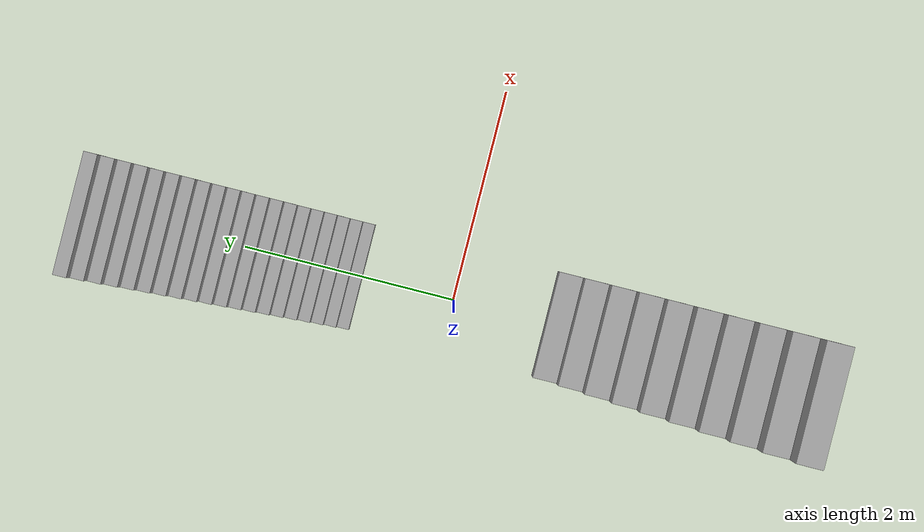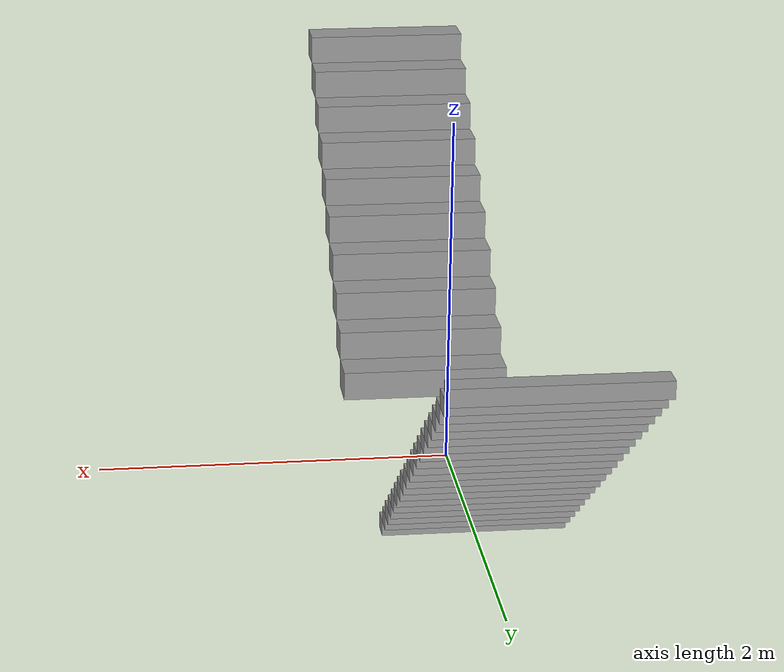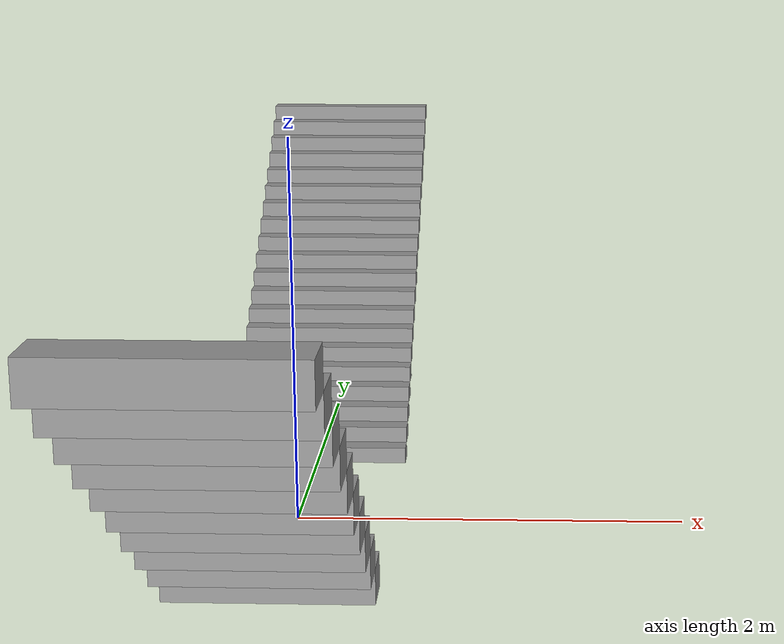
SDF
<?xml version='1.0'?>
<sdf version='1.7'>
  <model name='stairs'>
    <pose>0 0 0 0 -0 0</pose>
    <link name='Stairs_4'>
      <visual name='Stairs_4_Visual_0'>
        <pose>0 0.93125 0.04375 0 -0 -3.14159</pose>
        <geometry>
          <box>
            <size>1 0.1125 0.0875</size>
          </box>
        </geometry>
        <material>
          <script>
            <uri>file://media/materials/scripts/gazebo.material</uri>
            <name>Gazebo/Grey</name>
          </script>
          <ambient>1 1 1 1</ambient>
        </material>
        <meta>
          <layer>0</layer>
        </meta>
      </visual>
      <collision name='Stairs_4_Collision_0'>
        <geometry>
          <box>
            <size>1 0.1125 0.0875</size>
          </box>
        </geometry>
        <pose>0 0.93125 0.04375 0 -0 -3.14159</pose>
      </collision>
      <visual name='Stairs_4_Visual_1'>
        <pose>0 1.04375 0.13125 0 -0 -3.14159</pose>
        <geometry>
          <box>
            <size>1 0.1125 0.0875</size>
          </box>
        </geometry>
        <material>
          <script>
            <uri>file://media/materials/scripts/gazebo.material</uri>
            <name>Gazebo/Grey</name>
          </script>
          <ambient>1 1 1 1</ambient>
        </material>
        <meta>
          <layer>0</layer>
        </meta>
      </visual>
      <collision name='Stairs_4_Collision_1'>
        <geometry>
          <box>
            <size>1 0.1125 0.0875</size>
          </box>
        </geometry>
        <pose>0 1.04375 0.13125 0 -0 -3.14159</pose>
      </collision>
      <visual name='Stairs_4_Visual_2'>
        <pose>0 1.15625 0.21875 0 -0 -3.14159</pose>
        <geometry>
          <box>
            <size>1 0.1125 0.0875</size>
          </box>
        </geometry>
        <material>
          <script>
            <uri>file://media/materials/scripts/gazebo.material</uri>
            <name>Gazebo/Grey</name>
          </script>
          <ambient>1 1 1 1</ambient>
        </material>
        <meta>
          <layer>0</layer>
        </meta>
      </visual>
      <collision name='Stairs_4_Collision_2'>
        <geometry>
          <box>
            <size>1 0.1125 0.0875</size>
          </box>
        </geometry>
        <pose>0 1.15625 0.21875 0 -0 -3.14159</pose>
      </collision>
      <visual name='Stairs_4_Visual_3'>
        <pose>0 1.26875 0.30625 0 -0 -3.14159</pose>
        <geometry>
          <box>
            <size>1 0.1125 0.0875</size>
          </box>
        </geometry>
        <material>
          <script>
            <uri>file://media/materials/scripts/gazebo.material</uri>
            <name>Gazebo/Grey</name>
          </script>
          <ambient>1 1 1 1</ambient>
        </material>
        <meta>
          <layer>0</layer>
        </meta>
      </visual>
      <collision name='Stairs_4_Collision_3'>
        <geometry>
          <box>
            <size>1 0.1125 0.0875</size>
          </box>
        </geometry>
        <pose>0 1.26875 0.30625 0 -0 -3.14159</pose>
      </collision>
      <visual name='Stairs_4_Visual_4'>
        <pose>0 1.38125 0.39375 0 -0 -3.14159</pose>
        <geometry>
          <box>
            <size>1 0.1125 0.0875</size>
          </box>
        </geometry>
        <material>
          <script>
            <uri>file://media/materials/scripts/gazebo.material</uri>
            <name>Gazebo/Grey</name>
          </script>
          <ambient>1 1 1 1</ambient>
        </material>
        <meta>
          <layer>0</layer>
        </meta>
      </visual>
      <collision name='Stairs_4_Collision_4'>
        <geometry>
          <box>
            <size>1 0.1125 0.0875</size>
          </box>
        </geometry>
        <pose>0 1.38125 0.39375 0 -0 -3.14159</pose>
      </collision>
      <visual name='Stairs_4_Visual_5'>
        <pose>0 1.49375 0.48125 0 -0 -3.14159</pose>
        <geometry>
          <box>
            <size>1 0.1125 0.0875</size>
          </box>
        </geometry>
        <material>
          <script>
            <uri>file://media/materials/scripts/gazebo.material</uri>
            <name>Gazebo/Grey</name>
          </script>
          <ambient>1 1 1 1</ambient>
        </material>
        <meta>
          <layer>0</layer>
        </meta>
      </visual>
      <collision name='Stairs_4_Collision_5'>
        <geometry>
          <box>
            <size>1 0.1125 0.0875</size>
          </box>
        </geometry>
        <pose>0 1.49375 0.48125 0 -0 -3.14159</pose>
      </collision>
      <visual name='Stairs_4_Visual_6'>
        <pose>0 1.60625 0.56875 0 -0 -3.14159</pose>
        <geometry>
          <box>
            <size>1 0.1125 0.0875</size>
          </box>
        </geometry>
        <material>
          <script>
            <uri>file://media/materials/scripts/gazebo.material</uri>
            <name>Gazebo/Grey</name>
          </script>
          <ambient>1 1 1 1</ambient>
        </material>
        <meta>
          <layer>0</layer>
        </meta>
      </visual>
      <collision name='Stairs_4_Collision_6'>
        <geometry>
          <box>
            <size>1 0.1125 0.0875</size>
          </box>
        </geometry>
        <pose>0 1.60625 0.56875 0 -0 -3.14159</pose>
      </collision>
      <visual name='Stairs_4_Visual_7'>
        <pose>0 1.71875 0.65625 0 -0 -3.14159</pose>
        <geometry>
          <box>
            <size>1 0.1125 0.0875</size>
          </box>
        </geometry>
        <material>
          <script>
            <uri>file://media/materials/scripts/gazebo.material</uri>
            <name>Gazebo/Grey</name>
          </script>
          <ambient>1 1 1 1</ambient>
        </material>
        <meta>
          <layer>0</layer>
        </meta>
      </visual>
      <collision name='Stairs_4_Collision_7'>
        <geometry>
          <box>
            <size>1 0.1125 0.0875</size>
          </box>
        </geometry>
        <pose>0 1.71875 0.65625 0 -0 -3.14159</pose>
      </collision>
      <visual name='Stairs_4_Visual_8'>
        <pose>0 1.83125 0.74375 0 -0 -3.14159</pose>
        <geometry>
          <box>
            <size>1 0.1125 0.0875</size>
          </box>
        </geometry>
        <material>
          <script>
            <uri>file://media/materials/scripts/gazebo.material</uri>
            <name>Gazebo/Grey</name>
          </script>
          <ambient>1 1 1 1</ambient>
        </material>
        <meta>
          <layer>0</layer>
        </meta>
      </visual>
      <collision name='Stairs_4_Collision_8'>
        <geometry>
          <box>
            <size>1 0.1125 0.0875</size>
          </box>
        </geometry>
        <pose>0 1.83125 0.74375 0 -0 -3.14159</pose>
      </collision>
      <visual name='Stairs_4_Visual_9'>
        <pose>0 1.94375 0.83125 0 -0 -3.14159</pose>
        <geometry>
          <box>
            <size>1 0.1125 0.0875</size>
          </box>
        </geometry>
        <material>
          <script>
            <uri>file://media/materials/scripts/gazebo.material</uri>
            <name>Gazebo/Grey</name>
          </script>
          <ambient>1 1 1 1</ambient>
        </material>
        <meta>
          <layer>0</layer>
        </meta>
      </visual>
      <collision name='Stairs_4_Collision_9'>
        <geometry>
          <box>
            <size>1 0.1125 0.0875</size>
          </box>
        </geometry>
        <pose>0 1.94375 0.83125 0 -0 -3.14159</pose>
      </collision>
      <visual name='Stairs_4_Visual_10'>
        <pose>-0 2.05625 0.91875 0 -0 -3.14159</pose>
        <geometry>
          <box>
            <size>1 0.1125 0.0875</size>
          </box>
        </geometry>
        <material>
          <script>
            <uri>file://media/materials/scripts/gazebo.material</uri>
            <name>Gazebo/Grey</name>
          </script>
          <ambient>1 1 1 1</ambient>
        </material>
        <meta>
          <layer>0</layer>
        </meta>
      </visual>
      <collision name='Stairs_4_Collision_10'>
        <geometry>
          <box>
            <size>1 0.1125 0.0875</size>
          </box>
        </geometry>
        <pose>-0 2.05625 0.91875 0 -0 -3.14159</pose>
      </collision>
      <visual name='Stairs_4_Visual_11'>
        <pose>-0 2.16875 1.00625 0 -0 -3.14159</pose>
        <geometry>
          <box>
            <size>1 0.1125 0.0875</size>
          </box>
        </geometry>
        <material>
          <script>
            <uri>file://media/materials/scripts/gazebo.material</uri>
            <name>Gazebo/Grey</name>
          </script>
          <ambient>1 1 1 1</ambient>
        </material>
        <meta>
          <layer>0</layer>
        </meta>
      </visual>
      <collision name='Stairs_4_Collision_11'>
        <geometry>
          <box>
            <size>1 0.1125 0.0875</size>
          </box>
        </geometry>
        <pose>-0 2.16875 1.00625 0 -0 -3.14159</pose>
      </collision>
      <visual name='Stairs_4_Visual_12'>
        <pose>-0 2.28125 1.09375 0 -0 -3.14159</pose>
        <geometry>
          <box>
            <size>1 0.1125 0.0875</size>
          </box>
        </geometry>
        <material>
          <script>
            <uri>file://media/materials/scripts/gazebo.material</uri>
            <name>Gazebo/Grey</name>
          </script>
          <ambient>1 1 1 1</ambient>
        </material>
        <meta>
          <layer>0</layer>
        </meta>
      </visual>
      <collision name='Stairs_4_Collision_12'>
        <geometry>
          <box>
            <size>1 0.1125 0.0875</size>
          </box>
        </geometry>
        <pose>-0 2.28125 1.09375 0 -0 -3.14159</pose>
      </collision>
      <visual name='Stairs_4_Visual_13'>
        <pose>-0 2.39375 1.18125 0 -0 -3.14159</pose>
        <geometry>
          <box>
            <size>1 0.1125 0.0875</size>
          </box>
        </geometry>
        <material>
          <script>
            <uri>file://media/materials/scripts/gazebo.material</uri>
            <name>Gazebo/Grey</name>
          </script>
          <ambient>1 1 1 1</ambient>
        </material>
        <meta>
          <layer>0</layer>
        </meta>
      </visual>
      <collision name='Stairs_4_Collision_13'>
        <geometry>
          <box>
            <size>1 0.1125 0.0875</size>
          </box>
        </geometry>
        <pose>-0 2.39375 1.18125 0 -0 -3.14159</pose>
      </collision>
      <visual name='Stairs_4_Visual_14'>
        <pose>-0 2.50625 1.26875 0 -0 -3.14159</pose>
        <geometry>
          <box>
            <size>1 0.1125 0.0875</size>
          </box>
        </geometry>
        <material>
          <script>
            <uri>file://media/materials/scripts/gazebo.material</uri>
            <name>Gazebo/Grey</name>
          </script>
          <ambient>1 1 1 1</ambient>
        </material>
        <meta>
          <layer>0</layer>
        </meta>
      </visual>
      <collision name='Stairs_4_Collision_14'>
        <geometry>
          <box>
            <size>1 0.1125 0.0875</size>
          </box>
        </geometry>
        <pose>-0 2.50625 1.26875 0 -0 -3.14159</pose>
      </collision>
      <visual name='Stairs_4_Visual_15'>
        <pose>-0 2.61875 1.35625 0 -0 -3.14159</pose>
        <geometry>
          <box>
            <size>1 0.1125 0.0875</size>
          </box>
        </geometry>
        <material>
          <script>
            <uri>file://media/materials/scripts/gazebo.material</uri>
            <name>Gazebo/Grey</name>
          </script>
          <ambient>1 1 1 1</ambient>
        </material>
        <meta>
          <layer>0</layer>
        </meta>
      </visual>
      <collision name='Stairs_4_Collision_15'>
        <geometry>
          <box>
            <size>1 0.1125 0.0875</size>
          </box>
        </geometry>
        <pose>-0 2.61875 1.35625 0 -0 -3.14159</pose>
      </collision>
      <visual name='Stairs_4_Visual_16'>
        <pose>-0 2.73125 1.44375 0 -0 -3.14159</pose>
        <geometry>
          <box>
            <size>1 0.1125 0.0875</size>
          </box>
        </geometry>
        <material>
          <script>
            <uri>file://media/materials/scripts/gazebo.material</uri>
            <name>Gazebo/Grey</name>
          </script>
          <ambient>1 1 1 1</ambient>
        </material>
        <meta>
          <layer>0</layer>
        </meta>
      </visual>
      <collision name='Stairs_4_Collision_16'>
        <geometry>
          <box>
            <size>1 0.1125 0.0875</size>
          </box>
        </geometry>
        <pose>-0 2.73125 1.44375 0 -0 -3.14159</pose>
      </collision>
      <visual name='Stairs_4_Visual_17'>
        <pose>-0 2.84375 1.53125 0 -0 -3.14159</pose>
        <geometry>
          <box>
            <size>1 0.1125 0.0875</size>
          </box>
        </geometry>
        <material>
          <script>
            <uri>file://media/materials/scripts/gazebo.material</uri>
            <name>Gazebo/Grey</name>
          </script>
          <ambient>1 1 1 1</ambient>
        </material>
        <meta>
          <layer>0</layer>
        </meta>
      </visual>
      <collision name='Stairs_4_Collision_17'>
        <geometry>
          <box>
            <size>1 0.1125 0.0875</size>
          </box>
        </geometry>
        <pose>-0 2.84375 1.53125 0 -0 -3.14159</pose>
      </collision>
      <visual name='Stairs_4_Visual_18'>
        <pose>-0 2.95625 1.61875 0 -0 -3.14159</pose>
        <geometry>
          <box>
            <size>1 0.1125 0.0875</size>
          </box>
        </geometry>
        <material>
          <script>
            <uri>file://media/materials/scripts/gazebo.material</uri>
            <name>Gazebo/Grey</name>
          </script>
          <ambient>1 1 1 1</ambient>
        </material>
        <meta>
          <layer>0</layer>
        </meta>
      </visual>
      <collision name='Stairs_4_Collision_18'>
        <geometry>
          <box>
            <size>1 0.1125 0.0875</size>
          </box>
        </geometry>
        <pose>-0 2.95625 1.61875 0 -0 -3.14159</pose>
      </collision>
      <visual name='Stairs_4_Visual_19'>
        <pose>-0 3.06875 1.70625 0 -0 -3.14159</pose>
        <geometry>
          <box>
            <size>1 0.1125 0.0875</size>
          </box>
        </geometry>
        <material>
          <script>
            <uri>file://media/materials/scripts/gazebo.material</uri>
            <name>Gazebo/Grey</name>
          </script>
          <ambient>1 1 1 1</ambient>
        </material>
        <meta>
          <layer>0</layer>
        </meta>
      </visual>
      <collision name='Stairs_4_Collision_19'>
        <geometry>
          <box>
            <size>1 0.1125 0.0875</size>
          </box>
        </geometry>
        <pose>-0 3.06875 1.70625 0 -0 -3.14159</pose>
      </collision>
    </link>
    <link name='Stairs_6'>
      <visual name='Stairs_6_Visual_0'>
        <pose>0 -0.9875 0.0875 0 -0 0</pose>
        <geometry>
          <box>
            <size>1 0.225 0.175</size>
          </box>
        </geometry>
        <material>
          <script>
            <uri>file://media/materials/scripts/gazebo.material</uri>
            <name>Gazebo/Grey</name>
          </script>
          <ambient>1 1 1 1</ambient>
        </material>
        <meta>
          <layer>0</layer>
        </meta>
      </visual>
      <collision name='Stairs_6_Collision_0'>
        <geometry>
          <box>
            <size>1 0.225 0.175</size>
          </box>
        </geometry>
        <pose>0 -0.9875 0.0875 0 -0 0</pose>
      </collision>
      <visual name='Stairs_6_Visual_1'>
        <pose>0 -1.2125 0.2625 0 -0 0</pose>
        <geometry>
          <box>
            <size>1 0.225 0.175</size>
          </box>
        </geometry>
        <material>
          <script>
            <uri>file://media/materials/scripts/gazebo.material</uri>
            <name>Gazebo/Grey</name>
          </script>
          <ambient>1 1 1 1</ambient>
        </material>
        <meta>
          <layer>0</layer>
        </meta>
      </visual>
      <collision name='Stairs_6_Collision_1'>
        <geometry>
          <box>
            <size>1 0.225 0.175</size>
          </box>
        </geometry>
        <pose>0 -1.2125 0.2625 0 -0 0</pose>
      </collision>
      <visual name='Stairs_6_Visual_2'>
        <pose>0 -1.4375 0.4375 0 -0 0</pose>
        <geometry>
          <box>
            <size>1 0.225 0.175</size>
          </box>
        </geometry>
        <material>
          <script>
            <uri>file://media/materials/scripts/gazebo.material</uri>
            <name>Gazebo/Grey</name>
          </script>
          <ambient>1 1 1 1</ambient>
        </material>
        <meta>
          <layer>0</layer>
        </meta>
      </visual>
      <collision name='Stairs_6_Collision_2'>
        <geometry>
          <box>
            <size>1 0.225 0.175</size>
          </box>
        </geometry>
        <pose>0 -1.4375 0.4375 0 -0 0</pose>
      </collision>
      <visual name='Stairs_6_Visual_3'>
        <pose>0 -1.6625 0.6125 0 -0 0</pose>
        <geometry>
          <box>
            <size>1 0.225 0.175</size>
          </box>
        </geometry>
        <material>
          <script>
            <uri>file://media/materials/scripts/gazebo.material</uri>
            <name>Gazebo/Grey</name>
          </script>
          <ambient>1 1 1 1</ambient>
        </material>
        <meta>
          <layer>0</layer>
        </meta>
      </visual>
      <collision name='Stairs_6_Collision_3'>
        <geometry>
          <box>
            <size>1 0.225 0.175</size>
          </box>
        </geometry>
        <pose>0 -1.6625 0.6125 0 -0 0</pose>
      </collision>
      <visual name='Stairs_6_Visual_4'>
        <pose>0 -1.8875 0.7875 0 -0 0</pose>
        <geometry>
          <box>
            <size>1 0.225 0.175</size>
          </box>
        </geometry>
        <material>
          <script>
            <uri>file://media/materials/scripts/gazebo.material</uri>
            <name>Gazebo/Grey</name>
          </script>
          <ambient>1 1 1 1</ambient>
        </material>
        <meta>
          <layer>0</layer>
        </meta>
      </visual>
      <collision name='Stairs_6_Collision_4'>
        <geometry>
          <box>
            <size>1 0.225 0.175</size>
          </box>
        </geometry>
        <pose>0 -1.8875 0.7875 0 -0 0</pose>
      </collision>
      <visual name='Stairs_6_Visual_5'>
        <pose>0 -2.1125 0.9625 0 -0 0</pose>
        <geometry>
          <box>
            <size>1 0.225 0.175</size>
          </box>
        </geometry>
        <material>
          <script>
            <uri>file://media/materials/scripts/gazebo.material</uri>
            <name>Gazebo/Grey</name>
          </script>
          <ambient>1 1 1 1</ambient>
        </material>
        <meta>
          <layer>0</layer>
        </meta>
      </visual>
      <collision name='Stairs_6_Collision_5'>
        <geometry>
          <box>
            <size>1 0.225 0.175</size>
          </box>
        </geometry>
        <pose>0 -2.1125 0.9625 0 -0 0</pose>
      </collision>
      <visual name='Stairs_6_Visual_6'>
        <pose>0 -2.3375 1.1375 0 -0 0</pose>
        <geometry>
          <box>
            <size>1 0.225 0.175</size>
          </box>
        </geometry>
        <material>
          <script>
            <uri>file://media/materials/scripts/gazebo.material</uri>
            <name>Gazebo/Grey</name>
          </script>
          <ambient>1 1 1 1</ambient>
        </material>
        <meta>
          <layer>0</layer>
        </meta>
      </visual>
      <collision name='Stairs_6_Collision_6'>
        <geometry>
          <box>
            <size>1 0.225 0.175</size>
          </box>
        </geometry>
        <pose>0 -2.3375 1.1375 0 -0 0</pose>
      </collision>
      <visual name='Stairs_6_Visual_7'>
        <pose>0 -2.5625 1.3125 0 -0 0</pose>
        <geometry>
          <box>
            <size>1 0.225 0.175</size>
          </box>
        </geometry>
        <material>
          <script>
            <uri>file://media/materials/scripts/gazebo.material</uri>
            <name>Gazebo/Grey</name>
          </script>
          <ambient>1 1 1 1</ambient>
        </material>
        <meta>
          <layer>0</layer>
        </meta>
      </visual>
      <collision name='Stairs_6_Collision_7'>
        <geometry>
          <box>
            <size>1 0.225 0.175</size>
          </box>
        </geometry>
        <pose>0 -2.5625 1.3125 0 -0 0</pose>
      </collision>
      <visual name='Stairs_6_Visual_8'>
        <pose>0 -2.7875 1.4875 0 -0 0</pose>
        <geometry>
          <box>
            <size>1 0.225 0.175</size>
          </box>
        </geometry>
        <material>
          <script>
            <uri>file://media/materials/scripts/gazebo.material</uri>
            <name>Gazebo/Grey</name>
          </script>
          <ambient>1 1 1 1</ambient>
        </material>
        <meta>
          <layer>0</layer>
        </meta>
      </visual>
      <collision name='Stairs_6_Collision_8'>
        <geometry>
          <box>
            <size>1 0.225 0.175</size>
          </box>
        </geometry>
        <pose>0 -2.7875 1.4875 0 -0 0</pose>
      </collision>
      <visual name='Stairs_6_Visual_9'>
        <pose>0 -3.0125 1.6625 0 -0 0</pose>
        <geometry>
          <box>
            <size>1 0.225 0.175</size>
          </box>
        </geometry>
        <material>
          <script>
            <uri>file://media/materials/scripts/gazebo.material</uri>
            <name>Gazebo/Grey</name>
          </script>
          <ambient>1 1 1 1</ambient>
        </material>
        <meta>
          <layer>0</layer>
        </meta>
      </visual>
      <collision name='Stairs_6_Collision_9'>
        <geometry>
          <box>
            <size>1 0.225 0.175</size>
          </box>
        </geometry>
        <pose>0 -3.0125 1.6625 0 -0 0</pose>
      </collision>
    </link>
    <static>1</static>
  </model>
</sdf>
